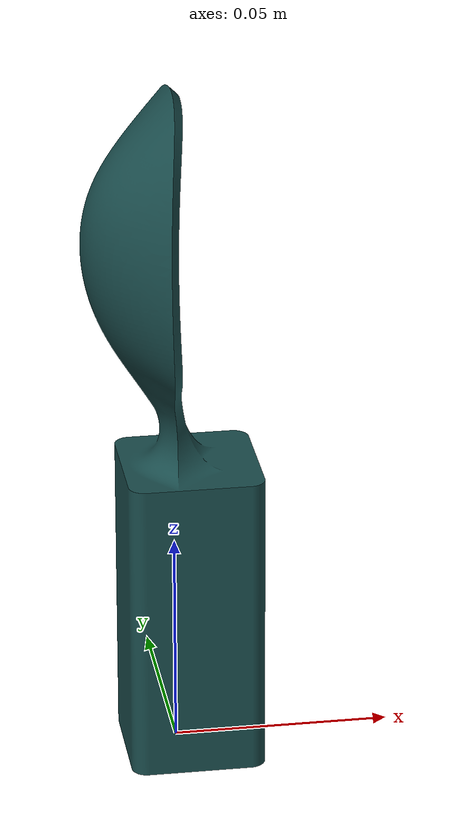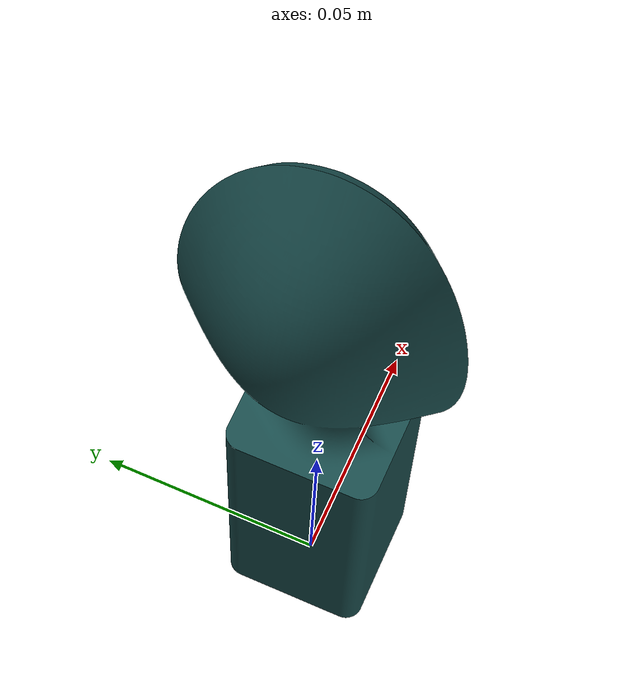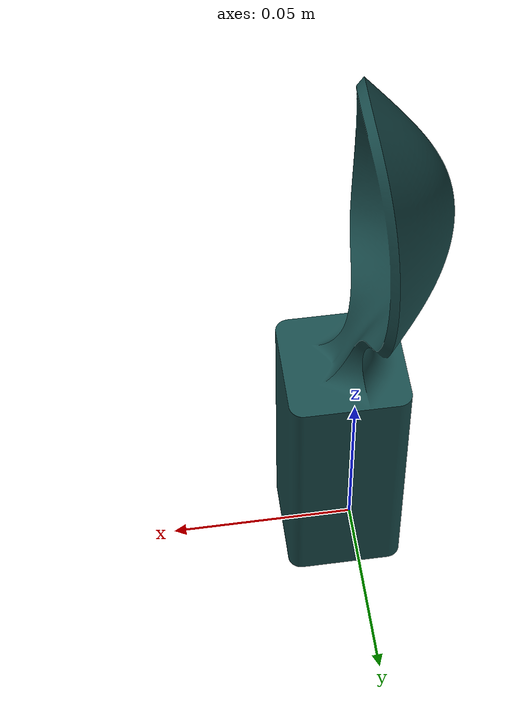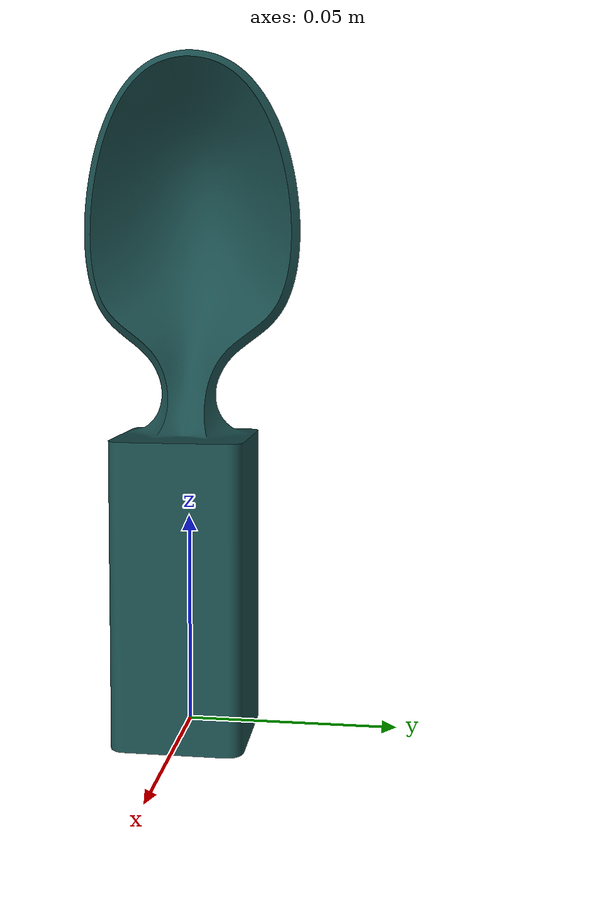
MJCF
<mujoco model="simple_spoon">
    <!-- Other elements and attributes -->

    <compiler angle="radian" meshdir="assets" autolimits="true" convexhull="true"/>

    <option impratio="10" o_margin="2.0"/>

    <asset>
        <mesh file="simple_spoon.stl" scale="0.0012 0.0012 0.0012"/>
    </asset>

    <worldbody>

        <body name="end_effector" pos="0 0 0.16" euler="1.57 1.57 0">
            <!-- Visual Geometry -->
            <geom type="mesh" mesh="simple_spoon" rgba="0.1 0.3 0.3 1"/>

            <!-- Collision Geometry -->
            <geom type="cylinder" size="0.03 0.08" pos="0 -0.08 0" euler="1.57 0 0" conaffinity="0" contype="1"  rgba="0 0 0 0"/>

            <!-- Adjust mass and inertia properties -->
            <inertial mass="0.05" pos="0 0 0.16" euler="1.57 1.57 0" diaginertia="0.01 0.01 0.01"/>

        </body>

    </worldbody>
</mujoco>
